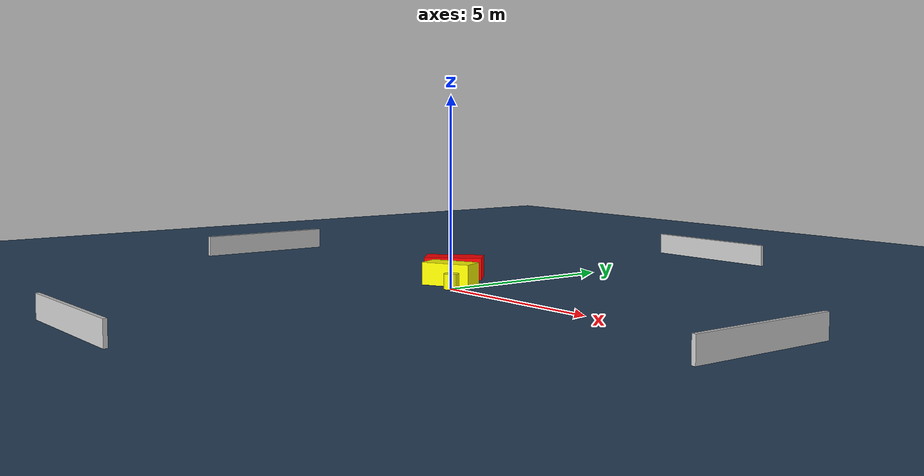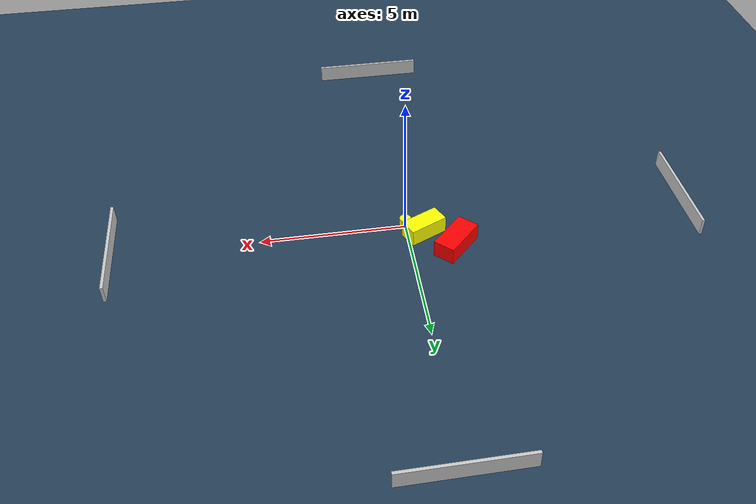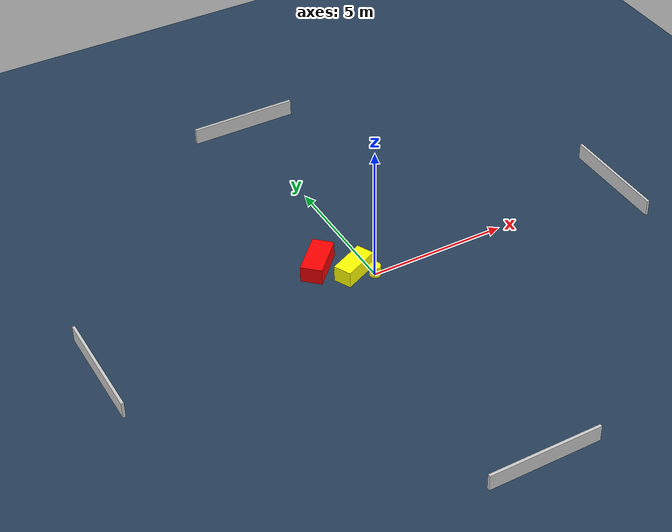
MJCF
<?xml version="1.0" ?>
<mujoco model="generated_environment">
  <option timestep="0.01" integrator="RK4" cone="elliptic"/>
  <default>
    <geom density="1"/>
  </default>
  <asset>
    <texture builtin="gradient" height="3072" name="skybox" rgb1="0.3 0.5 0.7" rgb2="0 0 0" type="skybox" width="512"/>
    <texture builtin="checker" height="300" name="groundplane" rgb1="0.2 0.3 0.4" rgb2="0.1 0.2 0.3" type="2d" width="300"/>
    <material name="groundplane" reflectance="0.2" texrepeat="5 5" texture="groundplane"/>
  </asset>
  <worldbody>
    <light dir="0 0 -1" directional="true" pos="0 0 1.5"/>
    <geom condim="3" friction="0.5 0.005 0.001" material="groundplane" name="floor" pos="0 0 0" size="0 0 0.05" type="plane"/>
    <body name="walls">
      <geom name="wall_1" condim="4" pos="-10.0 0.0 0.3" rgba="0.800000011920929 0.800000011920929 0.800000011920929 1.0" size="0.05 2.0 0.3" type="box"/>
      <geom name="wall_2" condim="4" pos="10.0 0.0 0.3" rgba="0.800000011920929 0.800000011920929 0.800000011920929 1.0" size="0.05 2.0 0.3" type="box"/>
      <geom name="wall_3" condim="4" pos="0.0 -10.0 0.3" rgba="0.800000011920929 0.800000011920929 0.800000011920929 1.0" size="2.0 0.05 0.3" type="box"/>
      <geom name="wall_4" condim="4" pos="0.0 10.0 0.3" rgba="0.800000011920929 0.800000011920929 0.800000011920929 1.0" size="2.0 0.05 0.3" type="box"/>
    </body>
    <body name="robot">
      <joint name="joint_x" type="slide" pos="0 0 0" axis="1 0 0"/>
      <joint name="joint_y" type="slide" pos="0 0 0" axis="0 1 0"/>
      <geom name="robot" type="cylinder" pos="0.0 0.0 0.2" size="0.2 0.2 0.0" mass="5.0" friction="1.0 0.005 0.0001" condim="4" rgba="1.0 1.0 0.0 1.0"/>
    </body>
    <body name="obstacle_1_movable">
      <geom name="obstacle_1_movable" condim="4" pos="-0.5827729858176951 0.4128938790212739 0.3" euler="0 0 295.2771168548398" friction="0.0 0.005 0.001" rgba="1.0 1.0 0.0 1.0" size="0.32815727798342964 0.6835727754216333 0.3" type="box" mass="0.1"/>
      <joint type="free"/>
    </body>
    <body name="obstacle_2_static">
      <geom name="obstacle_2_static" condim="4" pos="-1.5315384432186017 1.2563932457854705 0.3" euler="0 0 46.13861695011478" friction="0.0 0.005 0.001" rgba="1.0 0.0 0.0 1.0" size="0.782652134139034 0.3838163072853116 0.3" type="box"/>
    </body>
  </worldbody>
  <actuator>
    <motor name="actuator_x" joint="joint_x" gear="1" ctrlrange="-1 1"/>
    <motor name="actuator_y" joint="joint_y" gear="1" ctrlrange="-1 1"/>
  </actuator>
</mujoco>
